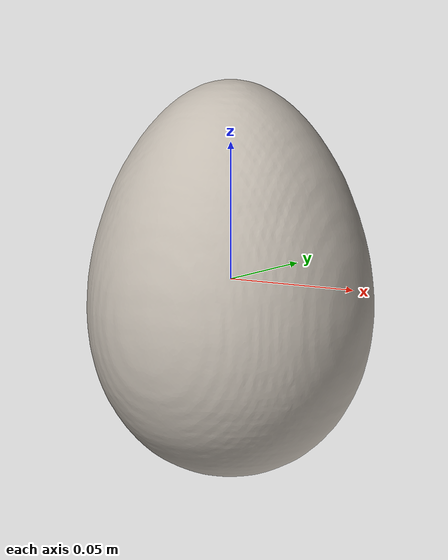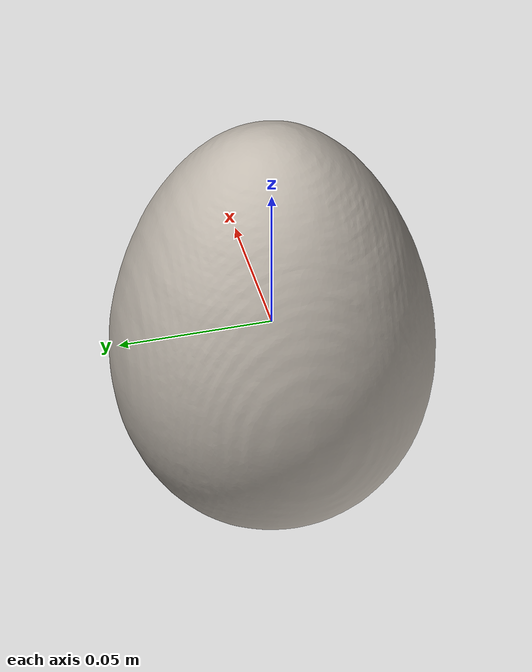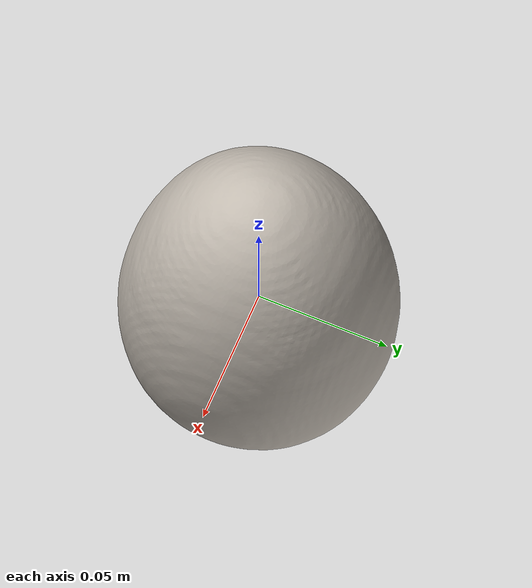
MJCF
<mujoco model="cereal_33">
  <asset>
    <mesh file="visual/model_normalized_0.obj" name="model_normalized_0_vis" scale="0.14499999999999996 0.14499999999999996 0.14499999999999996" refquat="1.0 0.0 0.0 0.0"/>
    <texture type="2d" name="image0" file="visual/image0.png"/>
    <material name="test_checker" texture="image0" specular="0.5" shininess="0.25"/>
  </asset>
  <custom><text name="material_gt" data="cardboard"/></custom>
  <default>
    <default class="region">
      <geom group="1" conaffinity="0" contype="0" rgba="0 1 0 0"/>
    </default>
  </default>
  <worldbody>
    <body>
      <body name="object">
        <geom solimp="0.998 0.998 0.001" solref="0.001 1" density="100" friction="0.95 0.3 0.1" type="mesh" mesh="model_normalized_0_vis" conaffinity="0" contype="0" group="1" material="test_checker"/>
        <geom solimp="0.998 0.998 0.001" solref="0.001 1" density="100" friction="0.95 0.3 0.1" type="box" group="0" rgba="0.8 0.8 0.8 0.0" size="0.018832138899999996 0.05957237709999998 0.07250000144999996" pos="0.0 0.0 1.4499999950734477e-09"/>
        <geom class="region" name="reg_bbox" type="box" pos="0.0 0.0 1.4499999950734477e-09" size="0.018832138899999996 0.05957237709999998 0.07250000144999996"/>
      </body>
    </body>
  </worldbody>
</mujoco>
